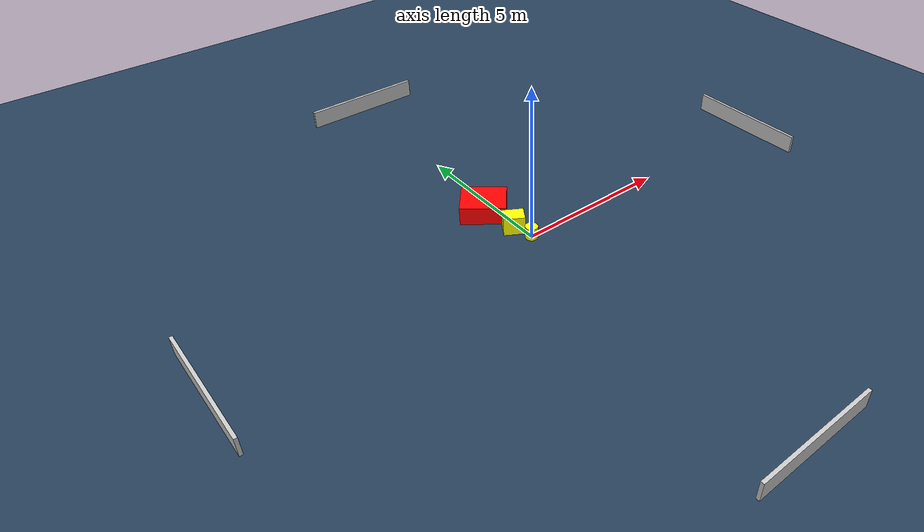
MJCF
<?xml version="1.0" ?>
<mujoco model="generated_environment">
  <option timestep="0.01" integrator="RK4" cone="elliptic"/>
  <default>
    <geom density="1"/>
  </default>
  <asset>
    <texture builtin="gradient" height="3072" name="skybox" rgb1="0.3 0.5 0.7" rgb2="0 0 0" type="skybox" width="512"/>
    <texture builtin="checker" height="300" name="groundplane" rgb1="0.2 0.3 0.4" rgb2="0.1 0.2 0.3" type="2d" width="300"/>
    <material name="groundplane" reflectance="0.2" texrepeat="5 5" texture="groundplane"/>
  </asset>
  <worldbody>
    <light dir="0 0 -1" directional="true" pos="0 0 1.5"/>
    <geom condim="3" friction="0.5 0.005 0.001" material="groundplane" name="floor" pos="0 0 0" size="0 0 0.05" type="plane"/>
    <body name="walls">
      <geom name="wall_1" condim="4" pos="-10.0 0.0 0.3" rgba="0.800000011920929 0.800000011920929 0.800000011920929 1.0" size="0.05 2.0 0.3" type="box"/>
      <geom name="wall_2" condim="4" pos="10.0 0.0 0.3" rgba="0.800000011920929 0.800000011920929 0.800000011920929 1.0" size="0.05 2.0 0.3" type="box"/>
      <geom name="wall_3" condim="4" pos="0.0 -10.0 0.3" rgba="0.800000011920929 0.800000011920929 0.800000011920929 1.0" size="2.0 0.05 0.3" type="box"/>
      <geom name="wall_4" condim="4" pos="0.0 10.0 0.3" rgba="0.800000011920929 0.800000011920929 0.800000011920929 1.0" size="2.0 0.05 0.3" type="box"/>
    </body>
    <body name="robot">
      <joint name="joint_x" type="slide" pos="0 0 0" axis="1 0 0"/>
      <joint name="joint_y" type="slide" pos="0 0 0" axis="0 1 0"/>
      <geom name="robot" type="cylinder" pos="0.0 0.0 0.2" size="0.2 0.2 0.0" mass="5.0" friction="1.0 0.005 0.0001" condim="4" rgba="1.0 1.0 0.0 1.0"/>
    </body>
    <body name="obstacle_1_movable">
      <geom name="obstacle_1_movable" condim="4" pos="-0.2060277259738555 0.6128377594327545 0.3" euler="0 0 59.042191748593225" friction="0.0 0.005 0.001" rgba="1.0 1.0 0.0 1.0" size="0.24529228210450432 0.33239273135792574 0.3" type="box" mass="0.1"/>
      <joint type="free"/>
    </body>
    <body name="obstacle_2_static">
      <geom name="obstacle_2_static" condim="4" pos="-0.3944729519361064 1.8740645676555845 0.3" euler="0 0 141.2869444361123" friction="0.0 0.005 0.001" rgba="1.0 0.0 0.0 1.0" size="0.7148322688568205 0.5859319591899302 0.3" type="box"/>
    </body>
  </worldbody>
  <actuator>
    <motor name="actuator_x" joint="joint_x" gear="1" ctrlrange="-1 1"/>
    <motor name="actuator_y" joint="joint_y" gear="1" ctrlrange="-1 1"/>
  </actuator>
</mujoco>
